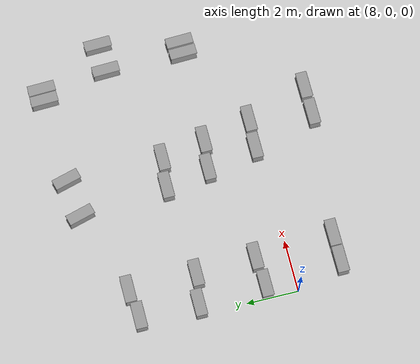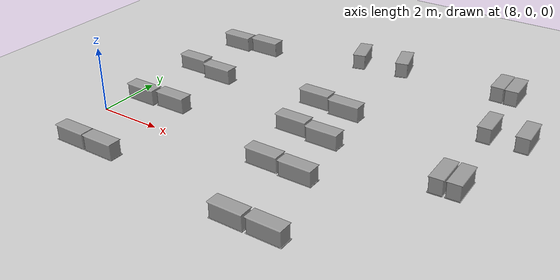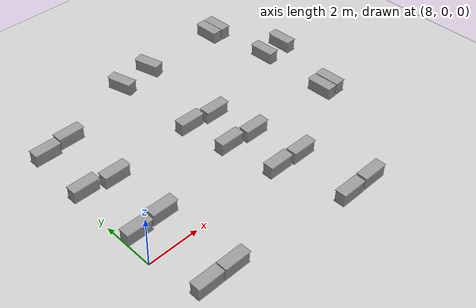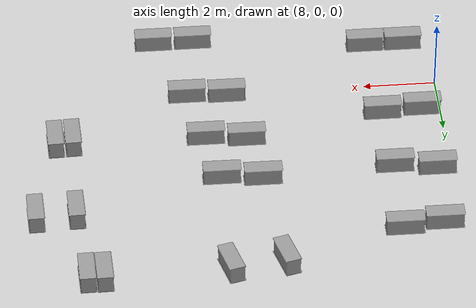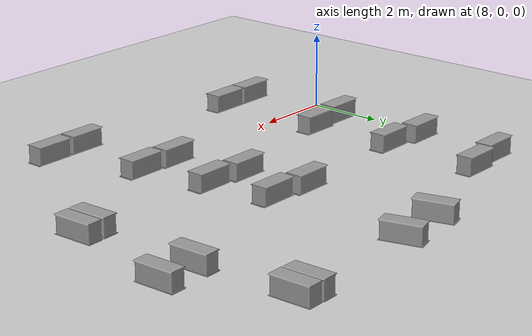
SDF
<sdf version="1.7">
 <world name="default">
  <model name="ground_plane">
   <static>1</static>
   <link name="link">
    <collision name="collision">
     <geometry><plane><normal>0 0 1</normal><size>100 100</size></plane></geometry>
     <surface>
      <contact><collide_bitmask>65535</collide_bitmask></contact>
      <friction><ode><mu>100</mu><mu2>50</mu2></ode></friction>
     </surface>
    </collision>
    <visual name="visual">
     <cast_shadows>0</cast_shadows>
     <geometry><plane><normal>0 0 1</normal><size>100 100</size></plane></geometry>
     <material>
      <script><uri>file://media/materials/scripts/gazebo.material</uri><name>Gazebo/Grey</name></script>
     </material>
    </visual>
   </link>
  </model>
  <model name="cotton_new_clone">
   <link name="link_0">
    <inertial>
     <mass>1</mass>
     <inertia>
      <ixx>0.166667</ixx>
      <ixy>0</ixy>
      <ixz>0</ixz>
      <iyy>0.166667</iyy>
      <iyz>0</iyz>
      <izz>0.166667</izz>
     </inertia>
    </inertial>
    <visual name="visual">
     <geometry><mesh><uri>/home/cyun/cotton_new2.obj</uri><scale>1 1 1</scale></mesh></geometry>
     <material>
      <lighting>1</lighting>
      <script><uri>file://media/materials/scripts/gazebo.material</uri><name>Gazebo/Grey</name></script>
      <shader type="pixel"/>
     </material>
    </visual>
    <collision name="collision">
     <geometry><mesh><uri>/home/cyun/cotton_new2.obj</uri><scale>1 1 1</scale></mesh></geometry>
     <surface>
      <friction>
       <ode><mu>1</mu><mu2>1</mu2><fdir1>0 0 0</fdir1><slip1>0</slip1><slip2>0</slip2></ode>
       <torsional>
        <coefficient>1</coefficient>
        <patch_radius>0</patch_radius>
        <surface_radius>0</surface_radius>
        <use_patch_radius>1</use_patch_radius>
        <ode><slip>0</slip></ode>
       </torsional>
      </friction>
      <bounce><restitution_coefficient>0</restitution_coefficient><threshold>1e+06</threshold></bounce>
      <contact>
       <collide_without_contact>0</collide_without_contact>
       <collide_without_contact_bitmask>1</collide_without_contact_bitmask>
       <collide_bitmask>1</collide_bitmask>
       <ode>
        <soft_cfm>0</soft_cfm>
        <soft_erp>0.2</soft_erp>
        <kp>1e+13</kp>
        <kd>1</kd>
        <max_vel>0.01</max_vel>
        <min_depth>0</min_depth>
       </ode>
       <bullet>
        <split_impulse>1</split_impulse>
        <split_impulse_penetration_threshold>-0.01</split_impulse_penetration_threshold>
        <soft_cfm>0</soft_cfm>
        <soft_erp>0.2</soft_erp>
        <kp>1e+13</kp>
        <kd>1</kd>
       </bullet>
      </contact>
     </surface>
    </collision>
   </link>
   <static>0</static>
   <pose>15.7299 -2.30959 2e-06 0 6e-06 0</pose>
  </model>
  <model name="cotton_new_clone_0">
   <link name="link_0">
    <inertial>
     <mass>1</mass>
     <inertia>
      <ixx>0.166667</ixx>
      <ixy>0</ixy>
      <ixz>0</ixz>
      <iyy>0.166667</iyy>
      <iyz>0</iyz>
      <izz>0.166667</izz>
     </inertia>
    </inertial>
    <visual name="visual">
     <geometry><mesh><uri>/home/cyun/cotton_new2.obj</uri><scale>1 1 1</scale></mesh></geometry>
     <material>
      <lighting>1</lighting>
      <script><uri>file://media/materials/scripts/gazebo.material</uri><name>Gazebo/Grey</name></script>
      <shader type="pixel"/>
     </material>
    </visual>
    <collision name="collision">
     <geometry><mesh><uri>/home/cyun/cotton_new2.obj</uri><scale>1 1 1</scale></mesh></geometry>
     <surface>
      <friction>
       <ode><mu>1</mu><mu2>1</mu2><fdir1>0 0 0</fdir1><slip1>0</slip1><slip2>0</slip2></ode>
       <torsional>
        <coefficient>1</coefficient>
        <patch_radius>0</patch_radius>
        <surface_radius>0</surface_radius>
        <use_patch_radius>1</use_patch_radius>
        <ode><slip>0</slip></ode>
       </torsional>
      </friction>
      <bounce><restitution_coefficient>0</restitution_coefficient><threshold>1e+06</threshold></bounce>
      <contact>
       <collide_without_contact>0</collide_without_contact>
       <collide_without_contact_bitmask>1</collide_without_contact_bitmask>
       <collide_bitmask>1</collide_bitmask>
       <ode>
        <soft_cfm>0</soft_cfm>
        <soft_erp>0.2</soft_erp>
        <kp>1e+13</kp>
        <kd>1</kd>
        <max_vel>0.01</max_vel>
        <min_depth>0</min_depth>
       </ode>
       <bullet>
        <split_impulse>1</split_impulse>
        <split_impulse_penetration_threshold>-0.01</split_impulse_penetration_threshold>
        <soft_cfm>0</soft_cfm>
        <soft_erp>0.2</soft_erp>
        <kp>1e+13</kp>
        <kd>1</kd>
       </bullet>
      </contact>
     </surface>
    </collision>
   </link>
   <static>0</static>
   <pose>14.6194 -2.31958 2e-06 0 -6e-06 0</pose>
  </model>
  <model name="cotton_new_clone_1">
   <link name="link_0">
    <inertial>
     <mass>1</mass>
     <inertia>
      <ixx>0.166667</ixx>
      <ixy>0</ixy>
      <ixz>0</ixz>
      <iyy>0.166667</iyy>
      <iyz>0</iyz>
      <izz>0.166667</izz>
     </inertia>
    </inertial>
    <visual name="visual">
     <geometry><mesh><uri>/home/cyun/cotton_new2.obj</uri><scale>1 1 1</scale></mesh></geometry>
     <material>
      <lighting>1</lighting>
      <script><uri>file://media/materials/scripts/gazebo.material</uri><name>Gazebo/Grey</name></script>
      <shader type="pixel"/>
     </material>
    </visual>
    <collision name="collision">
     <geometry><mesh><uri>/home/cyun/cotton_new2.obj</uri><scale>1 1 1</scale></mesh></geometry>
     <surface>
      <friction>
       <ode><mu>1</mu><mu2>1</mu2><fdir1>0 0 0</fdir1><slip1>0</slip1><slip2>0</slip2></ode>
       <torsional>
        <coefficient>1</coefficient>
        <patch_radius>0</patch_radius>
        <surface_radius>0</surface_radius>
        <use_patch_radius>1</use_patch_radius>
        <ode><slip>0</slip></ode>
       </torsional>
      </friction>
      <bounce><restitution_coefficient>0</restitution_coefficient><threshold>1e+06</threshold></bounce>
      <contact>
       <collide_without_contact>0</collide_without_contact>
       <collide_without_contact_bitmask>1</collide_without_contact_bitmask>
       <collide_bitmask>1</collide_bitmask>
       <ode>
        <soft_cfm>0</soft_cfm>
        <soft_erp>0.2</soft_erp>
        <kp>1e+13</kp>
        <kd>1</kd>
        <max_vel>0.01</max_vel>
        <min_depth>0</min_depth>
       </ode>
       <bullet>
        <split_impulse>1</split_impulse>
        <split_impulse_penetration_threshold>-0.01</split_impulse_penetration_threshold>
        <soft_cfm>0</soft_cfm>
        <soft_erp>0.2</soft_erp>
        <kp>1e+13</kp>
        <kd>1</kd>
       </bullet>
      </contact>
     </surface>
    </collision>
   </link>
   <static>0</static>
   <pose>9.78167 -1.80187 2e-06 0 6e-06 0</pose>
  </model>
  <model name="cotton_new_clone_2">
   <link name="link_0">
    <inertial>
     <mass>1</mass>
     <inertia>
      <ixx>0.166667</ixx>
      <ixy>0</ixy>
      <ixz>0</ixz>
      <iyy>0.166667</iyy>
      <iyz>0</iyz>
      <izz>0.166667</izz>
     </inertia>
    </inertial>
    <visual name="visual">
     <geometry><mesh><uri>/home/cyun/cotton_new2.obj</uri><scale>1 1 1</scale></mesh></geometry>
     <material>
      <lighting>1</lighting>
      <script><uri>file://media/materials/scripts/gazebo.material</uri><name>Gazebo/Grey</name></script>
      <shader type="pixel"/>
     </material>
    </visual>
    <collision name="collision">
     <geometry><mesh><uri>/home/cyun/cotton_new2.obj</uri><scale>1 1 1</scale></mesh></geometry>
     <surface>
      <friction>
       <ode><mu>1</mu><mu2>1</mu2><fdir1>0 0 0</fdir1><slip1>0</slip1><slip2>0</slip2></ode>
       <torsional>
        <coefficient>1</coefficient>
        <patch_radius>0</patch_radius>
        <surface_radius>0</surface_radius>
        <use_patch_radius>1</use_patch_radius>
        <ode><slip>0</slip></ode>
       </torsional>
      </friction>
      <bounce><restitution_coefficient>0</restitution_coefficient><threshold>1e+06</threshold></bounce>
      <contact>
       <collide_without_contact>0</collide_without_contact>
       <collide_without_contact_bitmask>1</collide_without_contact_bitmask>
       <collide_bitmask>1</collide_bitmask>
       <ode>
        <soft_cfm>0</soft_cfm>
        <soft_erp>0.2</soft_erp>
        <kp>1e+13</kp>
        <kd>1</kd>
        <max_vel>0.01</max_vel>
        <min_depth>0</min_depth>
       </ode>
       <bullet>
        <split_impulse>1</split_impulse>
        <split_impulse_penetration_threshold>-0.01</split_impulse_penetration_threshold>
        <soft_cfm>0</soft_cfm>
        <soft_erp>0.2</soft_erp>
        <kp>1e+13</kp>
        <kd>1</kd>
       </bullet>
      </contact>
     </surface>
    </collision>
   </link>
   <static>0</static>
   <pose>8.71295 -1.80192 2e-06 0 6e-06 0</pose>
  </model>
  <model name="cotton_new_clone_2_clone">
   <link name="link_0">
    <inertial>
     <mass>1</mass>
     <inertia>
      <ixx>0.166667</ixx>
      <ixy>0</ixy>
      <ixz>0</ixz>
      <iyy>0.166667</iyy>
      <iyz>0</iyz>
      <izz>0.166667</izz>
     </inertia>
    </inertial>
    <visual name="visual">
     <geometry><mesh><uri>/home/cyun/cotton_new2.obj</uri><scale>1 1 1</scale></mesh></geometry>
     <material>
      <lighting>1</lighting>
      <script><uri>file://media/materials/scripts/gazebo.material</uri><name>Gazebo/Grey</name></script>
      <shader type="pixel"/>
     </material>
    </visual>
    <collision name="collision">
     <geometry><mesh><uri>/home/cyun/cotton_new2.obj</uri><scale>1 1 1</scale></mesh></geometry>
     <surface>
      <friction>
       <ode><mu>1</mu><mu2>1</mu2><fdir1>0 0 0</fdir1><slip1>0</slip1><slip2>0</slip2></ode>
       <torsional>
        <coefficient>1</coefficient>
        <patch_radius>0</patch_radius>
        <surface_radius>0</surface_radius>
        <use_patch_radius>1</use_patch_radius>
        <ode><slip>0</slip></ode>
       </torsional>
      </friction>
      <bounce><restitution_coefficient>0</restitution_coefficient><threshold>1e+06</threshold></bounce>
      <contact>
       <collide_without_contact>0</collide_without_contact>
       <collide_without_contact_bitmask>1</collide_without_contact_bitmask>
       <collide_bitmask>1</collide_bitmask>
       <ode>
        <soft_cfm>0</soft_cfm>
        <soft_erp>0.2</soft_erp>
        <kp>1e+13</kp>
        <kd>1</kd>
        <max_vel>0.01</max_vel>
        <min_depth>0</min_depth>
       </ode>
       <bullet>
        <split_impulse>1</split_impulse>
        <split_impulse_penetration_threshold>-0.01</split_impulse_penetration_threshold>
        <soft_cfm>0</soft_cfm>
        <soft_erp>0.2</soft_erp>
        <kp>1e+13</kp>
        <kd>1</kd>
       </bullet>
      </contact>
     </surface>
    </collision>
   </link>
   <static>0</static>
   <pose>8.50317 1.16487 2e-06 0 6e-06 0</pose>
  </model>
  <model name="cotton_new_clone_1_clone">
   <link name="link_0">
    <inertial>
     <mass>1</mass>
     <inertia>
      <ixx>0.166667</ixx>
      <ixy>0</ixy>
      <ixz>0</ixz>
      <iyy>0.166667</iyy>
      <iyz>0</iyz>
      <izz>0.166667</izz>
     </inertia>
    </inertial>
    <visual name="visual">
     <geometry><mesh><uri>/home/cyun/cotton_new2.obj</uri><scale>1 1 1</scale></mesh></geometry>
     <material>
      <lighting>1</lighting>
      <script><uri>file://media/materials/scripts/gazebo.material</uri><name>Gazebo/Grey</name></script>
      <shader type="pixel"/>
     </material>
    </visual>
    <collision name="collision">
     <geometry><mesh><uri>/home/cyun/cotton_new2.obj</uri><scale>1 1 1</scale></mesh></geometry>
     <surface>
      <friction>
       <ode><mu>1</mu><mu2>1</mu2><fdir1>0 0 0</fdir1><slip1>0</slip1><slip2>0</slip2></ode>
       <torsional>
        <coefficient>1</coefficient>
        <patch_radius>0</patch_radius>
        <surface_radius>0</surface_radius>
        <use_patch_radius>1</use_patch_radius>
        <ode><slip>0</slip></ode>
       </torsional>
      </friction>
      <bounce><restitution_coefficient>0</restitution_coefficient><threshold>1e+06</threshold></bounce>
      <contact>
       <collide_without_contact>0</collide_without_contact>
       <collide_without_contact_bitmask>1</collide_without_contact_bitmask>
       <collide_bitmask>1</collide_bitmask>
       <ode>
        <soft_cfm>0</soft_cfm>
        <soft_erp>0.2</soft_erp>
        <kp>1e+13</kp>
        <kd>1</kd>
        <max_vel>0.01</max_vel>
        <min_depth>0</min_depth>
       </ode>
       <bullet>
        <split_impulse>1</split_impulse>
        <split_impulse_penetration_threshold>-0.01</split_impulse_penetration_threshold>
        <soft_cfm>0</soft_cfm>
        <soft_erp>0.2</soft_erp>
        <kp>1e+13</kp>
        <kd>1</kd>
       </bullet>
      </contact>
     </surface>
    </collision>
   </link>
   <static>0</static>
   <pose>9.61936 1.2538 2e-06 0 -6e-06 0</pose>
  </model>
  <model name="cotton_new_clone_1_clone_0">
   <link name="link_0">
    <inertial>
     <mass>1</mass>
     <inertia>
      <ixx>0.166667</ixx>
      <ixy>0</ixy>
      <ixz>0</ixz>
      <iyy>0.166667</iyy>
      <iyz>0</iyz>
      <izz>0.166667</izz>
     </inertia>
    </inertial>
    <visual name="visual">
     <geometry><mesh><uri>/home/cyun/cotton_new2.obj</uri><scale>1 1 1</scale></mesh></geometry>
     <material>
      <lighting>1</lighting>
      <script><uri>file://media/materials/scripts/gazebo.material</uri><name>Gazebo/Grey</name></script>
      <shader type="pixel"/>
     </material>
    </visual>
    <collision name="collision">
     <geometry><mesh><uri>/home/cyun/cotton_new2.obj</uri><scale>1 1 1</scale></mesh></geometry>
     <surface>
      <friction>
       <ode><mu>1</mu><mu2>1</mu2><fdir1>0 0 0</fdir1><slip1>0</slip1><slip2>0</slip2></ode>
       <torsional>
        <coefficient>1</coefficient>
        <patch_radius>0</patch_radius>
        <surface_radius>0</surface_radius>
        <use_patch_radius>1</use_patch_radius>
        <ode><slip>0</slip></ode>
       </torsional>
      </friction>
      <bounce><restitution_coefficient>0</restitution_coefficient><threshold>1e+06</threshold></bounce>
      <contact>
       <collide_without_contact>0</collide_without_contact>
       <collide_without_contact_bitmask>1</collide_without_contact_bitmask>
       <collide_bitmask>1</collide_bitmask>
       <ode>
        <soft_cfm>0</soft_cfm>
        <soft_erp>0.2</soft_erp>
        <kp>1e+13</kp>
        <kd>1</kd>
        <max_vel>0.01</max_vel>
        <min_depth>0</min_depth>
       </ode>
       <bullet>
        <split_impulse>1</split_impulse>
        <split_impulse_penetration_threshold>-0.01</split_impulse_penetration_threshold>
        <soft_cfm>0</soft_cfm>
        <soft_erp>0.2</soft_erp>
        <kp>1e+13</kp>
        <kd>1</kd>
       </bullet>
      </contact>
     </surface>
    </collision>
   </link>
   <static>0</static>
   <pose>8.39365 3.74499 2e-06 0 6e-06 0</pose>
  </model>
  <model name="cotton_new_clone_1_clone_1">
   <link name="link_0">
    <inertial>
     <mass>1</mass>
     <inertia>
      <ixx>0.166667</ixx>
      <ixy>0</ixy>
      <ixz>0</ixz>
      <iyy>0.166667</iyy>
      <iyz>0</iyz>
      <izz>0.166667</izz>
     </inertia>
    </inertial>
    <visual name="visual">
     <geometry><mesh><uri>/home/cyun/cotton_new2.obj</uri><scale>1 1 1</scale></mesh></geometry>
     <material>
      <lighting>1</lighting>
      <script><uri>file://media/materials/scripts/gazebo.material</uri><name>Gazebo/Grey</name></script>
      <shader type="pixel"/>
     </material>
    </visual>
    <collision name="collision">
     <geometry><mesh><uri>/home/cyun/cotton_new2.obj</uri><scale>1 1 1</scale></mesh></geometry>
     <surface>
      <friction>
       <ode><mu>1</mu><mu2>1</mu2><fdir1>0 0 0</fdir1><slip1>0</slip1><slip2>0</slip2></ode>
       <torsional>
        <coefficient>1</coefficient>
        <patch_radius>0</patch_radius>
        <surface_radius>0</surface_radius>
        <use_patch_radius>1</use_patch_radius>
        <ode><slip>0</slip></ode>
       </torsional>
      </friction>
      <bounce><restitution_coefficient>0</restitution_coefficient><threshold>1e+06</threshold></bounce>
      <contact>
       <collide_without_contact>0</collide_without_contact>
       <collide_without_contact_bitmask>1</collide_without_contact_bitmask>
       <collide_bitmask>1</collide_bitmask>
       <ode>
        <soft_cfm>0</soft_cfm>
        <soft_erp>0.2</soft_erp>
        <kp>1e+13</kp>
        <kd>1</kd>
        <max_vel>0.01</max_vel>
        <min_depth>0</min_depth>
       </ode>
       <bullet>
        <split_impulse>1</split_impulse>
        <split_impulse_penetration_threshold>-0.01</split_impulse_penetration_threshold>
        <soft_cfm>0</soft_cfm>
        <soft_erp>0.2</soft_erp>
        <kp>1e+13</kp>
        <kd>1</kd>
       </bullet>
      </contact>
     </surface>
    </collision>
   </link>
   <static>0</static>
   <pose>9.53581 3.56125 2e-06 0 -6e-06 0</pose>
  </model>
  <model name="cotton_new_clone_1_clone_2">
   <link name="link_0">
    <inertial>
     <mass>1</mass>
     <inertia>
      <ixx>0.166667</ixx>
      <ixy>0</ixy>
      <ixz>0</ixz>
      <iyy>0.166667</iyy>
      <iyz>0</iyz>
      <izz>0.166667</izz>
     </inertia>
    </inertial>
    <visual name="visual">
     <geometry><mesh><uri>/home/cyun/cotton_new2.obj</uri><scale>1 1 1</scale></mesh></geometry>
     <material>
      <lighting>1</lighting>
      <script><uri>file://media/materials/scripts/gazebo.material</uri><name>Gazebo/Grey</name></script>
      <shader type="pixel"/>
     </material>
    </visual>
    <collision name="collision">
     <geometry><mesh><uri>/home/cyun/cotton_new2.obj</uri><scale>1 1 1</scale></mesh></geometry>
     <surface>
      <friction>
       <ode><mu>1</mu><mu2>1</mu2><fdir1>0 0 0</fdir1><slip1>0</slip1><slip2>0</slip2></ode>
       <torsional>
        <coefficient>1</coefficient>
        <patch_radius>0</patch_radius>
        <surface_radius>0</surface_radius>
        <use_patch_radius>1</use_patch_radius>
        <ode><slip>0</slip></ode>
       </torsional>
      </friction>
      <bounce><restitution_coefficient>0</restitution_coefficient><threshold>1e+06</threshold></bounce>
      <contact>
       <collide_without_contact>0</collide_without_contact>
       <collide_without_contact_bitmask>1</collide_without_contact_bitmask>
       <collide_bitmask>1</collide_bitmask>
       <ode>
        <soft_cfm>0</soft_cfm>
        <soft_erp>0.2</soft_erp>
        <kp>1e+13</kp>
        <kd>1</kd>
        <max_vel>0.01</max_vel>
        <min_depth>0</min_depth>
       </ode>
       <bullet>
        <split_impulse>1</split_impulse>
        <split_impulse_penetration_threshold>-0.01</split_impulse_penetration_threshold>
        <soft_cfm>0</soft_cfm>
        <soft_erp>0.2</soft_erp>
        <kp>1e+13</kp>
        <kd>1</kd>
       </bullet>
      </contact>
     </surface>
    </collision>
   </link>
   <static>0</static>
   <pose>8.47134 6.0164 2e-06 0 6e-06 0</pose>
  </model>
  <model name="cotton_new_clone_1_clone_3">
   <link name="link_0">
    <inertial>
     <mass>1</mass>
     <inertia>
      <ixx>0.166667</ixx>
      <ixy>0</ixy>
      <ixz>0</ixz>
      <iyy>0.166667</iyy>
      <iyz>0</iyz>
      <izz>0.166667</izz>
     </inertia>
    </inertial>
    <visual name="visual">
     <geometry><mesh><uri>/home/cyun/cotton_new2.obj</uri><scale>1 1 1</scale></mesh></geometry>
     <material>
      <lighting>1</lighting>
      <script><uri>file://media/materials/scripts/gazebo.material</uri><name>Gazebo/Grey</name></script>
      <shader type="pixel"/>
     </material>
    </visual>
    <collision name="collision">
     <geometry><mesh><uri>/home/cyun/cotton_new2.obj</uri><scale>1 1 1</scale></mesh></geometry>
     <surface>
      <friction>
       <ode><mu>1</mu><mu2>1</mu2><fdir1>0 0 0</fdir1><slip1>0</slip1><slip2>0</slip2></ode>
       <torsional>
        <coefficient>1</coefficient>
        <patch_radius>0</patch_radius>
        <surface_radius>0</surface_radius>
        <use_patch_radius>1</use_patch_radius>
        <ode><slip>0</slip></ode>
       </torsional>
      </friction>
      <bounce><restitution_coefficient>0</restitution_coefficient><threshold>1e+06</threshold></bounce>
      <contact>
       <collide_without_contact>0</collide_without_contact>
       <collide_without_contact_bitmask>1</collide_without_contact_bitmask>
       <collide_bitmask>1</collide_bitmask>
       <ode>
        <soft_cfm>0</soft_cfm>
        <soft_erp>0.2</soft_erp>
        <kp>1e+13</kp>
        <kd>1</kd>
        <max_vel>0.01</max_vel>
        <min_depth>0</min_depth>
       </ode>
       <bullet>
        <split_impulse>1</split_impulse>
        <split_impulse_penetration_threshold>-0.01</split_impulse_penetration_threshold>
        <soft_cfm>0</soft_cfm>
        <soft_erp>0.2</soft_erp>
        <kp>1e+13</kp>
        <kd>1</kd>
       </bullet>
      </contact>
     </surface>
    </collision>
   </link>
   <static>0</static>
   <pose>9.55059 6.16118 2e-06 0 -6e-06 0</pose>
  </model>
  <model name="cotton_new_clone_1_clone_4">
   <link name="link_0">
    <inertial>
     <mass>1</mass>
     <inertia>
      <ixx>0.166667</ixx>
      <ixy>0</ixy>
      <ixz>0</ixz>
      <iyy>0.166667</iyy>
      <iyz>0</iyz>
      <izz>0.166667</izz>
     </inertia>
    </inertial>
    <visual name="visual">
     <geometry><mesh><uri>/home/cyun/cotton_new2.obj</uri><scale>1 1 1</scale></mesh></geometry>
     <material>
      <lighting>1</lighting>
      <script><uri>file://media/materials/scripts/gazebo.material</uri><name>Gazebo/Grey</name></script>
      <shader type="pixel"/>
     </material>
    </visual>
    <collision name="collision">
     <geometry><mesh><uri>/home/cyun/cotton_new2.obj</uri><scale>1 1 1</scale></mesh></geometry>
     <surface>
      <friction>
       <ode><mu>1</mu><mu2>1</mu2><fdir1>0 0 0</fdir1><slip1>0</slip1><slip2>0</slip2></ode>
       <torsional>
        <coefficient>1</coefficient>
        <patch_radius>0</patch_radius>
        <surface_radius>0</surface_radius>
        <use_patch_radius>1</use_patch_radius>
        <ode><slip>0</slip></ode>
       </torsional>
      </friction>
      <bounce><restitution_coefficient>0</restitution_coefficient><threshold>1e+06</threshold></bounce>
      <contact>
       <collide_without_contact>0</collide_without_contact>
       <collide_without_contact_bitmask>1</collide_without_contact_bitmask>
       <collide_bitmask>1</collide_bitmask>
       <ode>
        <soft_cfm>0</soft_cfm>
        <soft_erp>0.2</soft_erp>
        <kp>1e+13</kp>
        <kd>1</kd>
        <max_vel>0.01</max_vel>
        <min_depth>0</min_depth>
       </ode>
       <bullet>
        <split_impulse>1</split_impulse>
        <split_impulse_penetration_threshold>-0.01</split_impulse_penetration_threshold>
        <soft_cfm>0</soft_cfm>
        <soft_erp>0.2</soft_erp>
        <kp>1e+13</kp>
        <kd>1</kd>
       </bullet>
      </contact>
     </surface>
    </collision>
   </link>
   <static>0</static>
   <pose>13.8447 0.14662 2e-06 0 6e-06 0</pose>
  </model>
  <model name="cotton_new_clone_1_clone_5">
   <link name="link_0">
    <inertial>
     <mass>1</mass>
     <inertia>
      <ixx>0.166667</ixx>
      <ixy>0</ixy>
      <ixz>0</ixz>
      <iyy>0.166667</iyy>
      <iyz>0</iyz>
      <izz>0.166667</izz>
     </inertia>
    </inertial>
    <visual name="visual">
     <geometry><mesh><uri>/home/cyun/cotton_new2.obj</uri><scale>1 1 1</scale></mesh></geometry>
     <material>
      <lighting>1</lighting>
      <script><uri>file://media/materials/scripts/gazebo.material</uri><name>Gazebo/Grey</name></script>
      <shader type="pixel"/>
     </material>
    </visual>
    <collision name="collision">
     <geometry><mesh><uri>/home/cyun/cotton_new2.obj</uri><scale>1 1 1</scale></mesh></geometry>
     <surface>
      <friction>
       <ode><mu>1</mu><mu2>1</mu2><fdir1>0 0 0</fdir1><slip1>0</slip1><slip2>0</slip2></ode>
       <torsional>
        <coefficient>1</coefficient>
        <patch_radius>0</patch_radius>
        <surface_radius>0</surface_radius>
        <use_patch_radius>1</use_patch_radius>
        <ode><slip>0</slip></ode>
       </torsional>
      </friction>
      <bounce><restitution_coefficient>0</restitution_coefficient><threshold>1e+06</threshold></bounce>
      <contact>
       <collide_without_contact>0</collide_without_contact>
       <collide_without_contact_bitmask>1</collide_without_contact_bitmask>
       <collide_bitmask>1</collide_bitmask>
       <ode>
        <soft_cfm>0</soft_cfm>
        <soft_erp>0.2</soft_erp>
        <kp>1e+13</kp>
        <kd>1</kd>
        <max_vel>0.01</max_vel>
        <min_depth>0</min_depth>
       </ode>
       <bullet>
        <split_impulse>1</split_impulse>
        <split_impulse_penetration_threshold>-0.01</split_impulse_penetration_threshold>
        <soft_cfm>0</soft_cfm>
        <soft_erp>0.2</soft_erp>
        <kp>1e+13</kp>
        <kd>1</kd>
       </bullet>
      </contact>
     </surface>
    </collision>
   </link>
   <static>0</static>
   <pose>14.9465 0.091077 2e-06 0 -6e-06 0</pose>
  </model>
  <model name="cotton_new_clone_1_clone_6">
   <link name="link_0">
    <inertial>
     <mass>1</mass>
     <inertia>
      <ixx>0.166667</ixx>
      <ixy>0</ixy>
      <ixz>0</ixz>
      <iyy>0.166667</iyy>
      <iyz>0</iyz>
      <izz>0.166667</izz>
     </inertia>
    </inertial>
    <visual name="visual">
     <geometry><mesh><uri>/home/cyun/cotton_new2.obj</uri><scale>1 1 1</scale></mesh></geometry>
     <material>
      <lighting>1</lighting>
      <script><uri>file://media/materials/scripts/gazebo.material</uri><name>Gazebo/Grey</name></script>
      <shader type="pixel"/>
     </material>
    </visual>
    <collision name="collision">
     <geometry><mesh><uri>/home/cyun/cotton_new2.obj</uri><scale>1 1 1</scale></mesh></geometry>
     <surface>
      <friction>
       <ode><mu>1</mu><mu2>1</mu2><fdir1>0 0 0</fdir1><slip1>0</slip1><slip2>0</slip2></ode>
       <torsional>
        <coefficient>1</coefficient>
        <patch_radius>0</patch_radius>
        <surface_radius>0</surface_radius>
        <use_patch_radius>1</use_patch_radius>
        <ode><slip>0</slip></ode>
       </torsional>
      </friction>
      <bounce><restitution_coefficient>0</restitution_coefficient><threshold>1e+06</threshold></bounce>
      <contact>
       <collide_without_contact>0</collide_without_contact>
       <collide_without_contact_bitmask>1</collide_without_contact_bitmask>
       <collide_bitmask>1</collide_bitmask>
       <ode>
        <soft_cfm>0</soft_cfm>
        <soft_erp>0.2</soft_erp>
        <kp>1e+13</kp>
        <kd>1</kd>
        <max_vel>0.01</max_vel>
        <min_depth>0</min_depth>
       </ode>
       <bullet>
        <split_impulse>1</split_impulse>
        <split_impulse_penetration_threshold>-0.01</split_impulse_penetration_threshold>
        <soft_cfm>0</soft_cfm>
        <soft_erp>0.2</soft_erp>
        <kp>1e+13</kp>
        <kd>1</kd>
       </bullet>
      </contact>
     </surface>
    </collision>
   </link>
   <static>0</static>
   <pose>13.4496 2.0957 2e-06 0 6e-06 0</pose>
  </model>
  <model name="cotton_new_clone_1_clone_7">
   <link name="link_0">
    <inertial>
     <mass>1</mass>
     <inertia>
      <ixx>0.166667</ixx>
      <ixy>0</ixy>
      <ixz>0</ixz>
      <iyy>0.166667</iyy>
      <iyz>0</iyz>
      <izz>0.166667</izz>
     </inertia>
    </inertial>
    <visual name="visual">
     <geometry><mesh><uri>/home/cyun/cotton_new2.obj</uri><scale>1 1 1</scale></mesh></geometry>
     <material>
      <lighting>1</lighting>
      <script><uri>file://media/materials/scripts/gazebo.material</uri><name>Gazebo/Grey</name></script>
      <shader type="pixel"/>
     </material>
    </visual>
    <collision name="collision">
     <geometry><mesh><uri>/home/cyun/cotton_new2.obj</uri><scale>1 1 1</scale></mesh></geometry>
     <surface>
      <friction>
       <ode><mu>1</mu><mu2>1</mu2><fdir1>0 0 0</fdir1><slip1>0</slip1><slip2>0</slip2></ode>
       <torsional>
        <coefficient>1</coefficient>
        <patch_radius>0</patch_radius>
        <surface_radius>0</surface_radius>
        <use_patch_radius>1</use_patch_radius>
        <ode><slip>0</slip></ode>
       </torsional>
      </friction>
      <bounce><restitution_coefficient>0</restitution_coefficient><threshold>1e+06</threshold></bounce>
      <contact>
       <collide_without_contact>0</collide_without_contact>
       <collide_without_contact_bitmask>1</collide_without_contact_bitmask>
       <collide_bitmask>1</collide_bitmask>
       <ode>
        <soft_cfm>0</soft_cfm>
        <soft_erp>0.2</soft_erp>
        <kp>1e+13</kp>
        <kd>1</kd>
        <max_vel>0.01</max_vel>
        <min_depth>0</min_depth>
       </ode>
       <bullet>
        <split_impulse>1</split_impulse>
        <split_impulse_penetration_threshold>-0.01</split_impulse_penetration_threshold>
        <soft_cfm>0</soft_cfm>
        <soft_erp>0.2</soft_erp>
        <kp>1e+13</kp>
        <kd>1</kd>
       </bullet>
      </contact>
     </surface>
    </collision>
   </link>
   <static>0</static>
   <pose>14.5604 1.96671 2e-06 0 -6e-06 0</pose>
  </model>
  <model name="cotton_new_clone_1_clone_8">
   <link name="link_0">
    <inertial>
     <mass>1</mass>
     <inertia>
      <ixx>0.166667</ixx>
      <ixy>0</ixy>
      <ixz>0</ixz>
      <iyy>0.166667</iyy>
      <iyz>0</iyz>
      <izz>0.166667</izz>
     </inertia>
    </inertial>
    <visual name="visual">
     <geometry><mesh><uri>/home/cyun/cotton_new2.obj</uri><scale>1 1 1</scale></mesh></geometry>
     <material>
      <lighting>1</lighting>
      <script><uri>file://media/materials/scripts/gazebo.material</uri><name>Gazebo/Grey</name></script>
      <shader type="pixel"/>
     </material>
    </visual>
    <collision name="collision">
     <geometry><mesh><uri>/home/cyun/cotton_new2.obj</uri><scale>1 1 1</scale></mesh></geometry>
     <surface>
      <friction>
       <ode><mu>1</mu><mu2>1</mu2><fdir1>0 0 0</fdir1><slip1>0</slip1><slip2>0</slip2></ode>
       <torsional>
        <coefficient>1</coefficient>
        <patch_radius>0</patch_radius>
        <surface_radius>0</surface_radius>
        <use_patch_radius>1</use_patch_radius>
        <ode><slip>0</slip></ode>
       </torsional>
      </friction>
      <bounce><restitution_coefficient>0</restitution_coefficient><threshold>1e+06</threshold></bounce>
      <contact>
       <collide_without_contact>0</collide_without_contact>
       <collide_without_contact_bitmask>1</collide_without_contact_bitmask>
       <collide_bitmask>1</collide_bitmask>
       <ode>
        <soft_cfm>0</soft_cfm>
        <soft_erp>0.2</soft_erp>
        <kp>1e+13</kp>
        <kd>1</kd>
        <max_vel>0.01</max_vel>
        <min_depth>0</min_depth>
       </ode>
       <bullet>
        <split_impulse>1</split_impulse>
        <split_impulse_penetration_threshold>-0.01</split_impulse_penetration_threshold>
        <soft_cfm>0</soft_cfm>
        <soft_erp>0.2</soft_erp>
        <kp>1e+13</kp>
        <kd>1</kd>
       </bullet>
      </contact>
     </surface>
    </collision>
   </link>
   <static>0</static>
   <pose>13.1416 3.80333 2e-06 0 6e-06 0</pose>
  </model>
  <model name="cotton_new_clone_1_clone_9">
   <link name="link_0">
    <inertial>
     <mass>1</mass>
     <inertia>
      <ixx>0.166667</ixx>
      <ixy>0</ixy>
      <ixz>0</ixz>
      <iyy>0.166667</iyy>
      <iyz>0</iyz>
      <izz>0.166667</izz>
     </inertia>
    </inertial>
    <visual name="visual">
     <geometry><mesh><uri>/home/cyun/cotton_new2.obj</uri><scale>1 1 1</scale></mesh></geometry>
     <material>
      <lighting>1</lighting>
      <script><uri>file://media/materials/scripts/gazebo.material</uri><name>Gazebo/Grey</name></script>
      <shader type="pixel"/>
     </material>
    </visual>
    <collision name="collision">
     <geometry><mesh><uri>/home/cyun/cotton_new2.obj</uri><scale>1 1 1</scale></mesh></geometry>
     <surface>
      <friction>
       <ode><mu>1</mu><mu2>1</mu2><fdir1>0 0 0</fdir1><slip1>0</slip1><slip2>0</slip2></ode>
       <torsional>
        <coefficient>1</coefficient>
        <patch_radius>0</patch_radius>
        <surface_radius>0</surface_radius>
        <use_patch_radius>1</use_patch_radius>
        <ode><slip>0</slip></ode>
       </torsional>
      </friction>
      <bounce><restitution_coefficient>0</restitution_coefficient><threshold>1e+06</threshold></bounce>
      <contact>
       <collide_without_contact>0</collide_without_contact>
       <collide_without_contact_bitmask>1</collide_without_contact_bitmask>
       <collide_bitmask>1</collide_bitmask>
       <ode>
        <soft_cfm>0</soft_cfm>
        <soft_erp>0.2</soft_erp>
        <kp>1e+13</kp>
        <kd>1</kd>
        <max_vel>0.01</max_vel>
        <min_depth>0</min_depth>
       </ode>
       <bullet>
        <split_impulse>1</split_impulse>
        <split_impulse_penetration_threshold>-0.01</split_impulse_penetration_threshold>
        <soft_cfm>0</soft_cfm>
        <soft_erp>0.2</soft_erp>
        <kp>1e+13</kp>
        <kd>1</kd>
       </bullet>
      </contact>
     </surface>
    </collision>
   </link>
   <static>0</static>
   <pose>14.2509 3.67421 2e-06 0 -6e-06 0</pose>
  </model>
  <model name="cotton_me_0_clone_13_clone_1">
   <link name="link_1">
    <inertial>
     <mass>1</mass>
     <inertia>
      <ixx>0.166667</ixx>
      <ixy>0</ixy>
      <ixz>0</ixz>
      <iyy>0.166667</iyy>
      <iyz>0</iyz>
      <izz>0.166667</izz>
     </inertia>
    </inertial>
    <visual name="visual">
     <geometry><mesh><uri>/home/cyun/cotton_box.stl</uri><scale>1 1 1</scale></mesh></geometry>
     <material>
      <lighting>1</lighting>
      <script><uri>file://media/materials/scripts/gazebo.material</uri><name>Gazebo/Grey</name></script>
      <shader type="pixel"/>
     </material>
    </visual>
    <collision name="collision">
     <geometry><mesh><uri>/home/cyun/cotton_box.stl</uri><scale>1 1 1</scale></mesh></geometry>
     <surface>
      <friction>
       <ode><mu>1</mu><mu2>1</mu2><fdir1>0 0 0</fdir1><slip1>0</slip1><slip2>0</slip2></ode>
       <torsional>
        <coefficient>1</coefficient>
        <patch_radius>0</patch_radius>
        <surface_radius>0</surface_radius>
        <use_patch_radius>1</use_patch_radius>
        <ode><slip>0</slip></ode>
       </torsional>
      </friction>
      <bounce><restitution_coefficient>0</restitution_coefficient><threshold>1e+06</threshold></bounce>
      <contact>
       <collide_without_contact>0</collide_without_contact>
       <collide_without_contact_bitmask>1</collide_without_contact_bitmask>
       <collide_bitmask>1</collide_bitmask>
       <ode>
        <soft_cfm>0</soft_cfm>
        <soft_erp>0.2</soft_erp>
        <kp>1e+13</kp>
        <kd>1</kd>
        <max_vel>0.01</max_vel>
        <min_depth>0</min_depth>
       </ode>
       <bullet>
        <split_impulse>1</split_impulse>
        <split_impulse_penetration_threshold>-0.01</split_impulse_penetration_threshold>
        <soft_cfm>0</soft_cfm>
        <soft_erp>0.2</soft_erp>
        <kp>1e+13</kp>
        <kd>1</kd>
       </bullet>
      </contact>
     </surface>
    </collision>
   </link>
   <static>0</static>
   <pose>12.7971 7.21917 0.019995 1e-05 -0 0.263069</pose>
  </model>
  <model name="cotton_me_0_clone_13_clone_2">
   <link name="link_1">
    <inertial>
     <mass>1</mass>
     <inertia>
      <ixx>0.166667</ixx>
      <ixy>0</ixy>
      <ixz>0</ixz>
      <iyy>0.166667</iyy>
      <iyz>0</iyz>
      <izz>0.166667</izz>
     </inertia>
    </inertial>
    <visual name="visual">
     <geometry><mesh><uri>/home/cyun/cotton_box.stl</uri><scale>1 1 1</scale></mesh></geometry>
     <material>
      <lighting>1</lighting>
      <script><uri>file://media/materials/scripts/gazebo.material</uri><name>Gazebo/Grey</name></script>
      <shader type="pixel"/>
     </material>
    </visual>
    <collision name="collision">
     <geometry><mesh><uri>/home/cyun/cotton_box.stl</uri><scale>1 1 1</scale></mesh></geometry>
     <surface>
      <friction>
       <ode><mu>1</mu><mu2>1</mu2><fdir1>0 0 0</fdir1><slip1>0</slip1><slip2>0</slip2></ode>
       <torsional>
        <coefficient>1</coefficient>
        <patch_radius>0</patch_radius>
        <surface_radius>0</surface_radius>
        <use_patch_radius>1</use_patch_radius>
        <ode><slip>0</slip></ode>
       </torsional>
      </friction>
      <bounce><restitution_coefficient>0</restitution_coefficient><threshold>1e+06</threshold></bounce>
      <contact>
       <collide_without_contact>0</collide_without_contact>
       <collide_without_contact_bitmask>1</collide_without_contact_bitmask>
       <collide_bitmask>1</collide_bitmask>
       <ode>
        <soft_cfm>0</soft_cfm>
        <soft_erp>0.2</soft_erp>
        <kp>1e+13</kp>
        <kd>1</kd>
        <max_vel>0.01</max_vel>
        <min_depth>0</min_depth>
       </ode>
       <bullet>
        <split_impulse>1</split_impulse>
        <split_impulse_penetration_threshold>-0.01</split_impulse_penetration_threshold>
        <soft_cfm>0</soft_cfm>
        <soft_erp>0.2</soft_erp>
        <kp>1e+13</kp>
        <kd>1</kd>
       </bullet>
      </contact>
     </surface>
    </collision>
   </link>
   <static>0</static>
   <pose>14.2852 7.4016 0.019995 -1e-05 -0 0.263069</pose>
  </model>
  <model name="cotton_me_0_clone_13_clone_3">
   <link name="link_1">
    <inertial>
     <mass>1</mass>
     <inertia>
      <ixx>0.166667</ixx>
      <ixy>0</ixy>
      <ixz>0</ixz>
      <iyy>0.166667</iyy>
      <iyz>0</iyz>
      <izz>0.166667</izz>
     </inertia>
    </inertial>
    <visual name="visual">
     <geometry><mesh><uri>/home/cyun/cotton_box.stl</uri><scale>1 1 1</scale></mesh></geometry>
     <material>
      <lighting>1</lighting>
      <script><uri>file://media/materials/scripts/gazebo.material</uri><name>Gazebo/Grey</name></script>
      <shader type="pixel"/>
     </material>
    </visual>
    <collision name="collision">
     <geometry><mesh><uri>/home/cyun/cotton_box.stl</uri><scale>1 1 1</scale></mesh></geometry>
     <surface>
      <friction>
       <ode><mu>1</mu><mu2>1</mu2><fdir1>0 0 0</fdir1><slip1>0</slip1><slip2>0</slip2></ode>
       <torsional>
        <coefficient>1</coefficient>
        <patch_radius>0</patch_radius>
        <surface_radius>0</surface_radius>
        <use_patch_radius>1</use_patch_radius>
        <ode><slip>0</slip></ode>
       </torsional>
      </friction>
      <bounce><restitution_coefficient>0</restitution_coefficient><threshold>1e+06</threshold></bounce>
      <contact>
       <collide_without_contact>0</collide_without_contact>
       <collide_without_contact_bitmask>1</collide_without_contact_bitmask>
       <collide_bitmask>1</collide_bitmask>
       <ode>
        <soft_cfm>0</soft_cfm>
        <soft_erp>0.2</soft_erp>
        <kp>1e+13</kp>
        <kd>1</kd>
        <max_vel>0.01</max_vel>
        <min_depth>0</min_depth>
       </ode>
       <bullet>
        <split_impulse>1</split_impulse>
        <split_impulse_penetration_threshold>-0.01</split_impulse_penetration_threshold>
        <soft_cfm>0</soft_cfm>
        <soft_erp>0.2</soft_erp>
        <kp>1e+13</kp>
        <kd>1</kd>
       </bullet>
      </contact>
     </surface>
    </collision>
   </link>
   <static>0</static>
   <pose>18.2413 4.91407 0.019992 -1.6e-05 0 0.033407</pose>
  </model>
  <model name="cotton_me_0_clone_13_clone_4">
   <link name="link_1">
    <inertial>
     <mass>1</mass>
     <inertia>
      <ixx>0.166667</ixx>
      <ixy>0</ixy>
      <ixz>0</ixz>
      <iyy>0.166667</iyy>
      <iyz>0</iyz>
      <izz>0.166667</izz>
     </inertia>
    </inertial>
    <visual name="visual">
     <geometry><mesh><uri>/home/cyun/cotton_box.stl</uri><scale>1 1 1</scale></mesh></geometry>
     <material>
      <lighting>1</lighting>
      <script><uri>file://media/materials/scripts/gazebo.material</uri><name>Gazebo/Grey</name></script>
      <shader type="pixel"/>
     </material>
    </visual>
    <collision name="collision">
     <geometry><mesh><uri>/home/cyun/cotton_box.stl</uri><scale>1 1 1</scale></mesh></geometry>
     <surface>
      <friction>
       <ode><mu>1</mu><mu2>1</mu2><fdir1>0 0 0</fdir1><slip1>0</slip1><slip2>0</slip2></ode>
       <torsional>
        <coefficient>1</coefficient>
        <patch_radius>0</patch_radius>
        <surface_radius>0</surface_radius>
        <use_patch_radius>1</use_patch_radius>
        <ode><slip>0</slip></ode>
       </torsional>
      </friction>
      <bounce><restitution_coefficient>0</restitution_coefficient><threshold>1e+06</threshold></bounce>
      <contact>
       <collide_without_contact>0</collide_without_contact>
       <collide_without_contact_bitmask>1</collide_without_contact_bitmask>
       <collide_bitmask>1</collide_bitmask>
       <ode>
        <soft_cfm>0</soft_cfm>
        <soft_erp>0.2</soft_erp>
        <kp>1e+13</kp>
        <kd>1</kd>
        <max_vel>0.01</max_vel>
        <min_depth>0</min_depth>
       </ode>
       <bullet>
        <split_impulse>1</split_impulse>
        <split_impulse_penetration_threshold>-0.01</split_impulse_penetration_threshold>
        <soft_cfm>0</soft_cfm>
        <soft_erp>0.2</soft_erp>
        <kp>1e+13</kp>
        <kd>1</kd>
       </bullet>
      </contact>
     </surface>
    </collision>
   </link>
   <static>0</static>
   <pose>19.327 4.97021 0.019992 -1.6e-05 -0 0.031116</pose>
  </model>
  <model name="cotton_me_0_clone_13_clone_4_clone">
   <link name="link_1">
    <inertial>
     <mass>1</mass>
     <inertia>
      <ixx>0.166667</ixx>
      <ixy>0</ixy>
      <ixz>0</ixz>
      <iyy>0.166667</iyy>
      <iyz>0</iyz>
      <izz>0.166667</izz>
     </inertia>
    </inertial>
    <visual name="visual">
     <geometry><mesh><uri>/home/cyun/cotton_box.stl</uri><scale>1 1 1</scale></mesh></geometry>
     <material>
      <lighting>1</lighting>
      <script><uri>file://media/materials/scripts/gazebo.material</uri><name>Gazebo/Grey</name></script>
      <shader type="pixel"/>
     </material>
    </visual>
    <collision name="collision">
     <geometry><mesh><uri>/home/cyun/cotton_box.stl</uri><scale>1 1 1</scale></mesh></geometry>
     <surface>
      <friction>
       <ode><mu>1</mu><mu2>1</mu2><fdir1>0 0 0</fdir1><slip1>0</slip1><slip2>0</slip2></ode>
       <torsional>
        <coefficient>1</coefficient>
        <patch_radius>0</patch_radius>
        <surface_radius>0</surface_radius>
        <use_patch_radius>1</use_patch_radius>
        <ode><slip>0</slip></ode>
       </torsional>
      </friction>
      <bounce><restitution_coefficient>0</restitution_coefficient><threshold>1e+06</threshold></bounce>
      <contact>
       <collide_without_contact>0</collide_without_contact>
       <collide_without_contact_bitmask>1</collide_without_contact_bitmask>
       <collide_bitmask>1</collide_bitmask>
       <ode>
        <soft_cfm>0</soft_cfm>
        <soft_erp>0.2</soft_erp>
        <kp>1e+13</kp>
        <kd>1</kd>
        <max_vel>0.01</max_vel>
        <min_depth>0</min_depth>
       </ode>
       <bullet>
        <split_impulse>1</split_impulse>
        <split_impulse_penetration_threshold>-0.01</split_impulse_penetration_threshold>
        <soft_cfm>0</soft_cfm>
        <soft_erp>0.2</soft_erp>
        <kp>1e+13</kp>
        <kd>1</kd>
       </bullet>
      </contact>
     </surface>
    </collision>
   </link>
   <static>0</static>
   <pose>18.196 1.86681 0.019992 -1.6e-05 -0 0.031117</pose>
  </model>
  <model name="cotton_me_0_clone_13_clone_4_clone_0">
   <link name="link_1">
    <inertial>
     <mass>1</mass>
     <inertia>
      <ixx>0.166667</ixx>
      <ixy>0</ixy>
      <ixz>0</ixz>
      <iyy>0.166667</iyy>
      <iyz>0</iyz>
      <izz>0.166667</izz>
     </inertia>
    </inertial>
    <visual name="visual">
     <geometry><mesh><uri>/home/cyun/cotton_box.stl</uri><scale>1 1 1</scale></mesh></geometry>
     <material>
      <lighting>1</lighting>
      <script><uri>file://media/materials/scripts/gazebo.material</uri><name>Gazebo/Grey</name></script>
      <shader type="pixel"/>
     </material>
    </visual>
    <collision name="collision">
     <geometry><mesh><uri>/home/cyun/cotton_box.stl</uri><scale>1 1 1</scale></mesh></geometry>
     <surface>
      <friction>
       <ode><mu>1</mu><mu2>1</mu2><fdir1>0 0 0</fdir1><slip1>0</slip1><slip2>0</slip2></ode>
       <torsional>
        <coefficient>1</coefficient>
        <patch_radius>0</patch_radius>
        <surface_radius>0</surface_radius>
        <use_patch_radius>1</use_patch_radius>
        <ode><slip>0</slip></ode>
       </torsional>
      </friction>
      <bounce><restitution_coefficient>0</restitution_coefficient><threshold>1e+06</threshold></bounce>
      <contact>
       <collide_without_contact>0</collide_without_contact>
       <collide_without_contact_bitmask>1</collide_without_contact_bitmask>
       <collide_bitmask>1</collide_bitmask>
       <ode>
        <soft_cfm>0</soft_cfm>
        <soft_erp>0.2</soft_erp>
        <kp>1e+13</kp>
        <kd>1</kd>
        <max_vel>0.01</max_vel>
        <min_depth>0</min_depth>
       </ode>
       <bullet>
        <split_impulse>1</split_impulse>
        <split_impulse_penetration_threshold>-0.01</split_impulse_penetration_threshold>
        <soft_cfm>0</soft_cfm>
        <soft_erp>0.2</soft_erp>
        <kp>1e+13</kp>
        <kd>1</kd>
       </bullet>
      </contact>
     </surface>
    </collision>
   </link>
   <static>0</static>
   <pose>18.6726 1.88903 0.019992 -1.6e-05 -0 0.031116</pose>
  </model>
  <model name="cotton_me_0_clone_13_clone_4_clone_1">
   <link name="link_1">
    <inertial>
     <mass>1</mass>
     <inertia>
      <ixx>0.166667</ixx>
      <ixy>0</ixy>
      <ixz>0</ixz>
      <iyy>0.166667</iyy>
      <iyz>0</iyz>
      <izz>0.166667</izz>
     </inertia>
    </inertial>
    <visual name="visual">
     <geometry><mesh><uri>/home/cyun/cotton_box.stl</uri><scale>1 1 1</scale></mesh></geometry>
     <material>
      <lighting>1</lighting>
      <script><uri>file://media/materials/scripts/gazebo.material</uri><name>Gazebo/Grey</name></script>
      <shader type="pixel"/>
     </material>
    </visual>
    <collision name="collision">
     <geometry><mesh><uri>/home/cyun/cotton_box.stl</uri><scale>1 1 1</scale></mesh></geometry>
     <surface>
      <friction>
       <ode><mu>1</mu><mu2>1</mu2><fdir1>0 0 0</fdir1><slip1>0</slip1><slip2>0</slip2></ode>
       <torsional>
        <coefficient>1</coefficient>
        <patch_radius>0</patch_radius>
        <surface_radius>0</surface_radius>
        <use_patch_radius>1</use_patch_radius>
        <ode><slip>0</slip></ode>
       </torsional>
      </friction>
      <bounce><restitution_coefficient>0</restitution_coefficient><threshold>1e+06</threshold></bounce>
      <contact>
       <collide_without_contact>0</collide_without_contact>
       <collide_without_contact_bitmask>1</collide_without_contact_bitmask>
       <collide_bitmask>1</collide_bitmask>
       <ode>
        <soft_cfm>0</soft_cfm>
        <soft_erp>0.2</soft_erp>
        <kp>1e+13</kp>
        <kd>1</kd>
        <max_vel>0.01</max_vel>
        <min_depth>0</min_depth>
       </ode>
       <bullet>
        <split_impulse>1</split_impulse>
        <split_impulse_penetration_threshold>-0.01</split_impulse_penetration_threshold>
        <soft_cfm>0</soft_cfm>
        <soft_erp>0.2</soft_erp>
        <kp>1e+13</kp>
        <kd>1</kd>
       </bullet>
      </contact>
     </surface>
    </collision>
   </link>
   <static>0</static>
   <pose>17.63 7.48351 0.019992 -1.6e-05 -0 0.031116</pose>
  </model>
  <model name="cotton_me_0_clone_13_clone_4_clone_2">
   <link name="link_1">
    <inertial>
     <mass>1</mass>
     <inertia>
      <ixx>0.166667</ixx>
      <ixy>0</ixy>
      <ixz>0</ixz>
      <iyy>0.166667</iyy>
      <iyz>0</iyz>
      <izz>0.166667</izz>
     </inertia>
    </inertial>
    <visual name="visual">
     <geometry><mesh><uri>/home/cyun/cotton_box.stl</uri><scale>1 1 1</scale></mesh></geometry>
     <material>
      <lighting>1</lighting>
      <script><uri>file://media/materials/scripts/gazebo.material</uri><name>Gazebo/Grey</name></script>
      <shader type="pixel"/>
     </material>
    </visual>
    <collision name="collision">
     <geometry><mesh><uri>/home/cyun/cotton_box.stl</uri><scale>1 1 1</scale></mesh></geometry>
     <surface>
      <friction>
       <ode><mu>1</mu><mu2>1</mu2><fdir1>0 0 0</fdir1><slip1>0</slip1><slip2>0</slip2></ode>
       <torsional>
        <coefficient>1</coefficient>
        <patch_radius>0</patch_radius>
        <surface_radius>0</surface_radius>
        <use_patch_radius>1</use_patch_radius>
        <ode><slip>0</slip></ode>
       </torsional>
      </friction>
      <bounce><restitution_coefficient>0</restitution_coefficient><threshold>1e+06</threshold></bounce>
      <contact>
       <collide_without_contact>0</collide_without_contact>
       <collide_without_contact_bitmask>1</collide_without_contact_bitmask>
       <collide_bitmask>1</collide_bitmask>
       <ode>
        <soft_cfm>0</soft_cfm>
        <soft_erp>0.2</soft_erp>
        <kp>1e+13</kp>
        <kd>1</kd>
        <max_vel>0.01</max_vel>
        <min_depth>0</min_depth>
       </ode>
       <bullet>
        <split_impulse>1</split_impulse>
        <split_impulse_penetration_threshold>-0.01</split_impulse_penetration_threshold>
        <soft_cfm>0</soft_cfm>
        <soft_erp>0.2</soft_erp>
        <kp>1e+13</kp>
        <kd>1</kd>
       </bullet>
      </contact>
     </surface>
    </collision>
   </link>
   <static>0</static>
   <pose>18.0812 7.47994 0.019995 1e-05 0 0.031115</pose>
  </model>
 </world>
</sdf>
